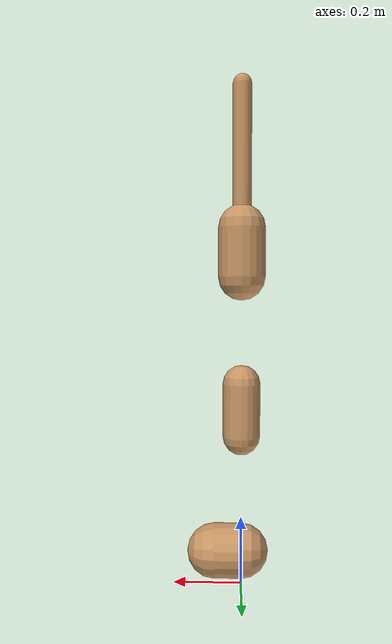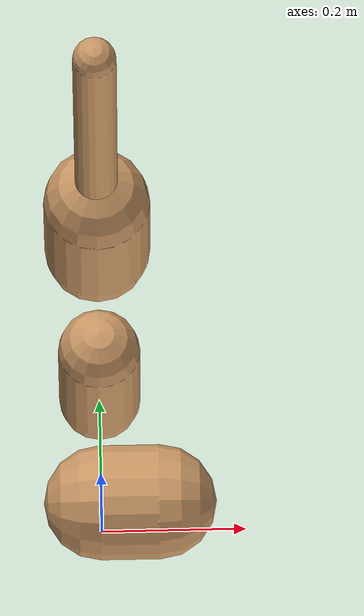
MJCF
<mujoco model="walker2d">
  <compiler angle="degree" coordinate="global" inertiafromgeom="true" />
  <default>
    <joint armature="0.01" damping=".1" limited="true" />
    <geom conaffinity="0" condim="3" contype="1" density="1000" friction="0.8 .1 .1" rgba="0.8 0.6 .4 1" />
  </default>
  <option integrator="RK4" timestep="0.002" />
  <worldbody>

    <body name="torso" pos="0 0 -0.6549764552766499">
      <joint armature="0" axis="1 0 0" damping="0" limited="false" name="ignorex" pos="0 0 0" stiffness="0" type="slide" />
      <joint armature="0" axis="0 0 1" damping="0" limited="false" name="ignorez" pos="0 0 0" ref="1.25" stiffness="0" type="slide" />
      <joint armature="0" axis="0 1 0" damping="0" limited="false" name="ignorey" pos="0 0 0" stiffness="0" type="hinge" />
      <geom fromto="0 0 1.45 0 0 1.05" name="torso_geom" size="0.02704705192433067" type="capsule" />
      <body name="thigh">
        <joint axis="0 -1 0" name="thigh_joint" pos="0 0 1.05" range="-150 0" type="hinge" />
        <geom fromto="0.0 0.0 1.05 0.0 0.0 0.9102520051310448" name="thigh_geom" size="0.06779129822408596" type="capsule" />
        <body name="leg" pos="0.0 0.0 0.3102520051310448">
          <joint axis="0 -1 0" name="leg_joint" pos="0 0 0.6" range="-150 0" type="hinge" />
          <geom fromto="0.0 0.0 0.6 0.0 0.0 0.44472445014560524" name="leg_geom" size="0.05423303857926877" type="capsule" />
          <body name="foot" pos="0.0 0.0 0.34472445014560527">
            <joint axis="0 -1 0" name="foot_joint" pos="0 0 0.1" range="-45 45" type="hinge" />
            <geom fromto="0.0 0.0 0.1 0.079533867252162 0.0 0.1" name="foot_geom" size="0.0793943706259065" type="capsule" />
          </body>
        </body>
      </body>

      <body name="thigh_left">
        <joint axis="0 -1 0" name="thigh_left_joint" pos="0 0 1.05" range="-150 0" type="hinge" />
        <geom fromto="0.0 0.0 1.05 0.0 0.0 0.9102520051310448" name="thigh_left_geom" rgba=".7 .3 .6 1" size="0.06779129822408596" type="capsule" />
        <body name="leg_left" pos="0.0 0.0 0.3102520051310448">
          <joint axis="0 -1 0" name="leg_left_joint" pos="0 0 0.6" range="-150 0" type="hinge" />
          <geom fromto="0.0 0.0 0.6 0.0 0.0 0.44472445014560524" name="leg_left_geom" rgba=".7 .3 .6 1" size="0.05423303857926877" type="capsule" />
          <body name="foot_left" pos="0.0 0.0 0.34472445014560527">
            <joint axis="0 -1 0" name="foot_left_joint" pos="0 0 0.1" range="-45 45" type="hinge" />
            <geom fromto="0.0 0.0 0.1 0.079533867252162 0.0 0.1" name="foot_left_geom" rgba=".7 .3 .6 1" size="0.0793943706259065" type="capsule" />
          </body>
        </body>
      </body>
    </body>
  </worldbody>
  <actuator>

    <motor ctrllimited="true" ctrlrange="-1.0 1.0" gear="100" joint="thigh_joint" />
    <motor ctrllimited="true" ctrlrange="-1.0 1.0" gear="100" joint="leg_joint" />
    <motor ctrllimited="true" ctrlrange="-1.0 1.0" gear="100" joint="foot_joint" />
    <motor ctrllimited="true" ctrlrange="-1.0 1.0" gear="100" joint="thigh_left_joint" />
    <motor ctrllimited="true" ctrlrange="-1.0 1.0" gear="100" joint="leg_left_joint" />
    <motor ctrllimited="true" ctrlrange="-1.0 1.0" gear="100" joint="foot_left_joint" />

  </actuator>
</mujoco>
